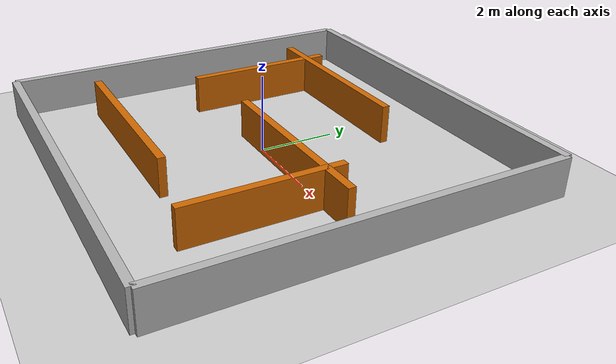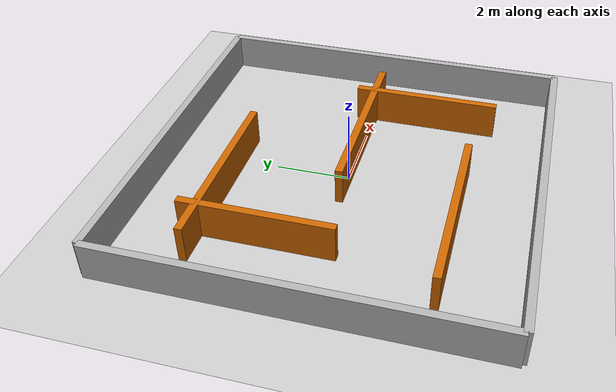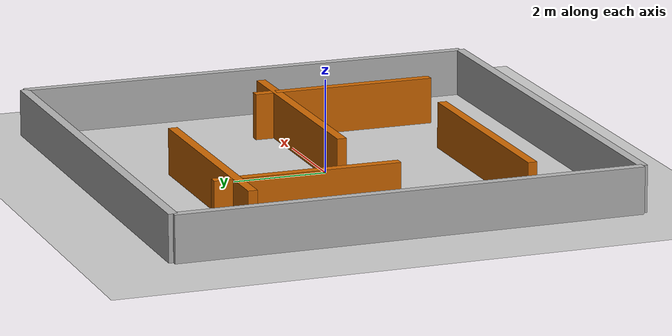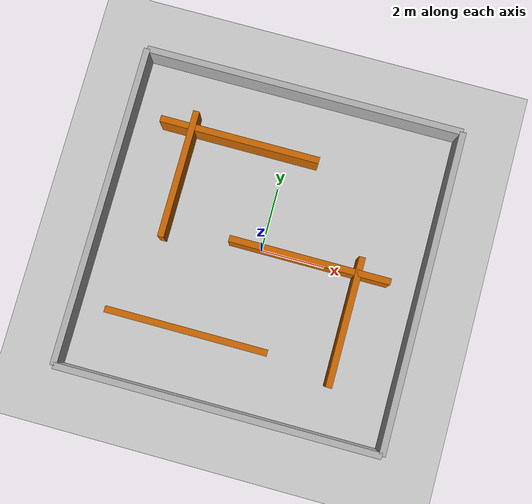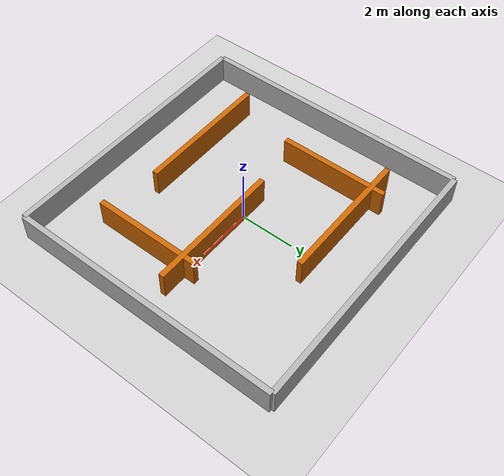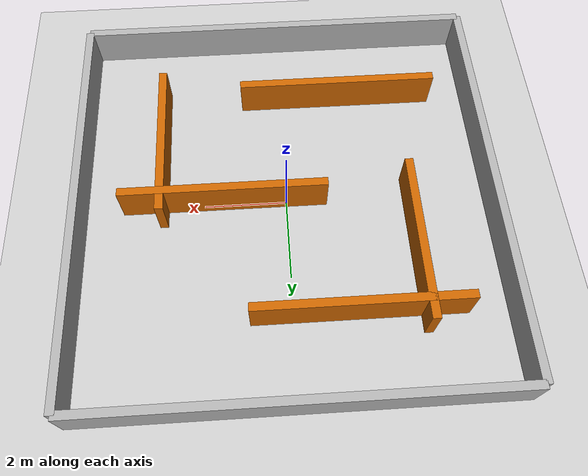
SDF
<?xml version="1.0" ?>
<sdf version="1.6">
  <world name="maze">

    <plugin filename="gz-sim-physics-system"
            name="gz::sim::systems::Physics"/>
    <plugin filename="gz-sim-scene-broadcaster-system"
            name="gz::sim::systems::SceneBroadcaster"/>
    <plugin filename="gz-sim-user-commands-system"
            name="gz::sim::systems::UserCommands"/>

    <light type="directional" name="sun">
      <cast_shadows>false</cast_shadows>
      <pose>0 0 10 0 0 0</pose>
      <diffuse>0.9 0.9 0.9 1</diffuse>
      <specular>0.3 0.3 0.3 1</specular>
      <direction>-0.5 0.1 -0.9</direction>
      <intensity>1.5</intensity>
      <attenuation>
        <range>1000</range>
        <constant>0.9</constant>
        <linear>0.01</linear>
        <quadratic>0.001</quadratic>
      </attenuation>
    </light>

    <!-- Ambient light -->
    <ambient>0.6 0.6 0.6 1</ambient>

    <!-- Ground Plane -->
    <model name="ground_plane">
      <static>true</static>
      <link name="link">
        <collision name="collision">
          <geometry>
            <plane>
              <normal>0 0 1</normal>
            </plane>
          </geometry>
        </collision>
        <visual name="visual">
          <geometry>
            <plane>
              <normal>0 0 1</normal>
              <size>100 100</size>
            </plane>
          </geometry>
          <material>
            <ambient>0.8 0.8 0.8 1</ambient>
            <diffuse>0.8 0.8 0.8 1</diffuse>
          </material>
        </visual>
      </link>
    </model>

    <!-- OUTER WALLS -->

    <model name="wall_north">
      <static>true</static>
      <pose>0 5 0.5 0 0 0</pose>
      <link name="link">
        <collision name="collision">
          <geometry><box><size>10 0.2 1</size></box></geometry>
        </collision>
        <visual name="visual">
          <geometry><box><size>10 0.2 1</size></box></geometry>
          <material>
            <ambient>0.7 0.7 0.7 1</ambient>
            <diffuse>0.7 0.7 0.7 1</diffuse>
          </material>
        </visual>
      </link>
    </model>

    <model name="wall_south">
      <static>true</static>
      <pose>0 -5 0.5 0 0 0</pose>
      <link name="link">
        <collision name="collision">
          <geometry><box><size>10 0.2 1</size></box></geometry>
        </collision>
        <visual name="visual">
          <geometry><box><size>10 0.2 1</size></box></geometry>
          <material>
            <ambient>0.7 0.7 0.7 1</ambient>
            <diffuse>0.7 0.7 0.7 1</diffuse>
          </material>
        </visual>
      </link>
    </model>

    <model name="wall_east">
      <static>true</static>
      <pose>5 0 0.5 0 0 0</pose>
      <link name="link">
        <collision name="collision">
          <geometry><box><size>0.2 10 1</size></box></geometry>
        </collision>
        <visual name="visual">
          <geometry><box><size>0.2 10 1</size></box></geometry>
          <material>
            <ambient>0.7 0.7 0.7 1</ambient>
            <diffuse>0.7 0.7 0.7 1</diffuse>
          </material>
        </visual>
      </link>
    </model>

    <model name="wall_west">
      <static>true</static>
      <pose>-5 0 0.5 0 0 0</pose>
      <link name="link">
        <collision name="collision">
          <geometry><box><size>0.2 10 1</size></box></geometry>
        </collision>
        <visual name="visual">
          <geometry><box><size>0.2 10 1</size></box></geometry>
          <material>
            <ambient>0.7 0.7 0.7 1</ambient>
            <diffuse>0.7 0.7 0.7 1</diffuse>
          </material>
        </visual>
      </link>
    </model>

    <!-- INNER MAZE WALLS -->

    <model name="maze_h1">
      <static>true</static>
      <pose>-1.5 3 0.5 0 0 0</pose>
      <link name="link">
        <collision name="collision">
          <geometry><box><size>5 0.2 1</size></box></geometry>
        </collision>
        <visual name="visual">
          <geometry><box><size>5 0.2 1</size></box></geometry>
          <material>
            <ambient>0.8 0.4 0.0 1</ambient>
            <diffuse>0.8 0.4 0.0 1</diffuse>
          </material>
        </visual>
      </link>
    </model>

    <model name="maze_h2">
      <static>true</static>
      <pose>1.5 0 0.5 0 0 0</pose>
      <link name="link">
        <collision name="collision">
          <geometry><box><size>5 0.2 1</size></box></geometry>
        </collision>
        <visual name="visual">
          <geometry><box><size>5 0.2 1</size></box></geometry>
          <material>
            <ambient>0.8 0.4 0.0 1</ambient>
            <diffuse>0.8 0.4 0.0 1</diffuse>
          </material>
        </visual>
      </link>
    </model>

    <model name="maze_h3">
      <static>true</static>
      <pose>-1.5 -3 0.5 0 0 0</pose>
      <link name="link">
        <collision name="collision">
          <geometry><box><size>5 0.2 1</size></box></geometry>
        </collision>
        <visual name="visual">
          <geometry><box><size>5 0.2 1</size></box></geometry>
          <material>
            <ambient>0.8 0.4 0.0 1</ambient>
            <diffuse>0.8 0.4 0.0 1</diffuse>
          </material>
        </visual>
      </link>
    </model>

    <model name="maze_v1">
      <static>true</static>
      <pose>-3 1.5 0.5 0 0 0</pose>
      <link name="link">
        <collision name="collision">
          <geometry><box><size>0.2 4 1</size></box></geometry>
        </collision>
        <visual name="visual">
          <geometry><box><size>0.2 4 1</size></box></geometry>
          <material>
            <ambient>0.8 0.4 0.0 1</ambient>
            <diffuse>0.8 0.4 0.0 1</diffuse>
          </material>
        </visual>
      </link>
    </model>

    <model name="maze_v2">
      <static>true</static>
      <pose>3 -1.5 0.5 0 0 0</pose>
      <link name="link">
        <collision name="collision">
          <geometry><box><size>0.2 4 1</size></box></geometry>
        </collision>
        <visual name="visual">
          <geometry><box><size>0.2 4 1</size></box></geometry>
          <material>
            <ambient>0.8 0.4 0.0 1</ambient>
            <diffuse>0.8 0.4 0.0 1</diffuse>
          </material>
        </visual>
      </link>
    </model>

  </world>
</sdf>
